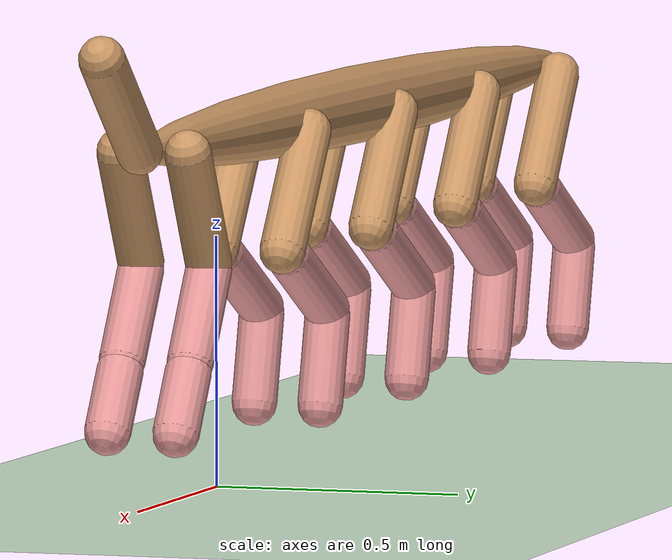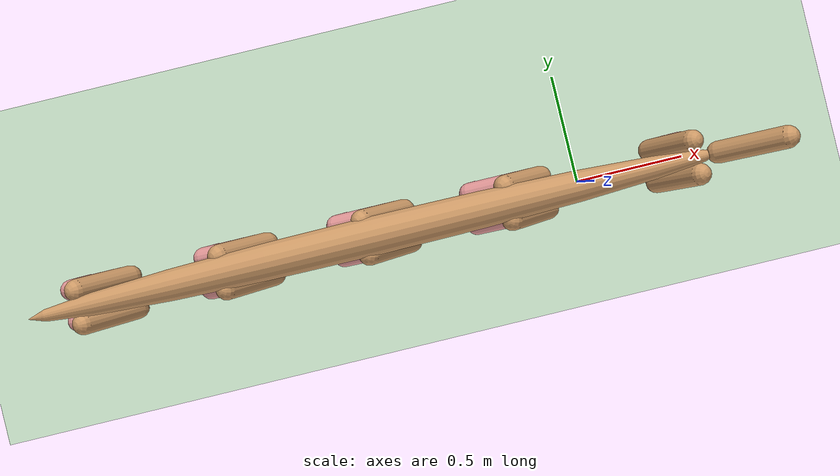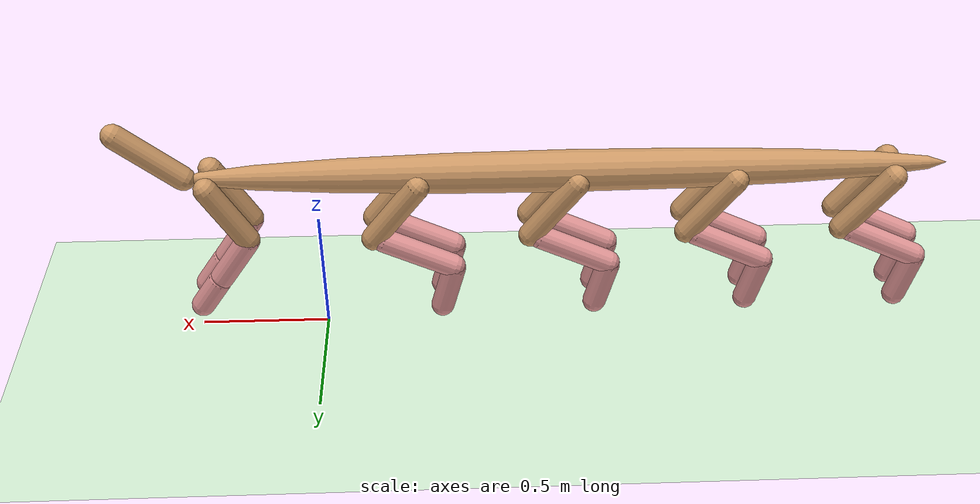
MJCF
<mujoco model="10-leg-creature">
  <compiler angle="radian" coordinate="local" inertiafromgeom="true" settotalmass="14"/>
  <default>
    <joint armature=".1" damping=".01" limited="true" solimplimit="0 .8 .03" solreflimit=".02 1" stiffness="8"/>
    <geom conaffinity="0" condim="3" contype="1" friction=".4 .1 .1" rgba="0.8 0.6 .4 1" solimp="0.0 0.8 0.01" solref="0.02 1"/>
    <motor ctrllimited="true" ctrlrange="-1 1"/>
  </default>
  <size nstack="300000" nuser_geom="1"/>
  <option gravity="0 0 -9.81" timestep="0.01"/>
  <asset>
    <texture builtin="gradient" height="100" rgb1="1 1 1" rgb2="0 0 0" type="skybox" width="100"/>
    <texture builtin="flat" height="1278" mark="cross" markrgb="1 1 1" name="texgeom" random="0.01" rgb1="0.8 0.6 0.4" rgb2="0.8 0.6 0.4" type="cube" width="127"/>
    <texture builtin="checker" height="100" name="texplane" rgb1="0 0 0" rgb2="0.8 0.8 0.8" type="2d" width="100"/>
    <material name="MatPlane" reflectance="0.5" shininess="1" specular="1" texrepeat="60 60" texture="texplane"/>
    <material name="geom" texture="texgeom" texuniform="true"/>
  </asset>
  <worldbody>
    <light cutoff="100" diffuse="1 1 1" dir="-0 0 -1.3" directional="true" exponent="1" pos="0 0 1.3" specular=".1 .1 .1"/>
    <geom conaffinity="1" condim="3" material="MatPlane" name="floor" pos="0 0 0" rgba="0.8 0.9 0.8 1" size="40 40 40" type="plane"/>
    <body name="torso" pos="0 0 .7">
      <camera name="track" mode="trackcom" pos="0 -6 0.3" xyaxes="1 0 0 0 0 1"/>
      <joint armature="0" axis="1 0 0" damping="0" limited="false" name="rootx" pos="0 0 0" stiffness="0" type="slide"/>
      <joint armature="0" axis="0 0 1" damping="0" limited="false" name="rootz" pos="0 0 0" stiffness="0" type="slide"/>
      <joint armature="0" axis="0 1 0" damping="0" limited="false" name="rooty" pos="0 0 0" stiffness="0" type="hinge"/>
      <geom fromto="-2.4 0 0 .5 0 0" name="torso" size="0.08" type="ellipsoid" mass="4"/>
      <geom axisangle="0 1 0 .87" name="head" pos=".6 0 .1" size="0.046 .15" type="capsule"/>
      <body name="left_bthigh" pos="-.4 0.07 0">
        <joint axis="0 1 0" damping="6" name="left_bthigh" pos="0 0 0" range="-.52 1.05" stiffness="240" type="hinge"/>
        <geom axisangle="0 1 0 -3.8" name="left_bthigh" pos=".1 0 -.13" size="0.046 .145" type="capsule"/>
        <body name="left_bshin" pos=".16 0 -.25">
          <joint axis="0 1 0" damping="4.5" name="left_bshin" pos="0 0 0" range="-.785 .785" stiffness="180" type="hinge"/>
          <geom axisangle="0 1 0 -2.03" name="left_bshin" pos="-.14 0 -.07" rgba="0.9 0.6 0.6 1" size="0.046 .15" type="capsule"/>
          <body name="left_bfoot" pos="-.28 0 -.14">
            <joint axis="0 1 0" damping="3" name="left_bfoot" pos="0 0 0" range="-.4 .785" stiffness="120" type="hinge"/>
            <geom axisangle="0 1 0 -.27" name="left_bfoot" pos=".03 0 -.097" rgba="0.9 0.6 0.6 1" size="0.046 .094" type="capsule"/>
          </body>
        </body>
      </body>
       <body name="right_bthigh" pos="-.4 -0.07 0">
        <joint axis="0 1 0" damping="6" name="right_bthigh" pos="0 0 0" range="-.52 1.05" stiffness="240" type="hinge"/>
        <geom axisangle="0 1 0 -3.8" name="right_bthigh" pos=".1 0 -.13" size="0.046 .145" type="capsule"/>
        <body name="right_bshin" pos=".16 0 -.25">
          <joint axis="0 1 0" damping="4.5" name="right_bshin" pos="0 0 0" range="-.785 .785" stiffness="180" type="hinge"/>
          <geom axisangle="0 1 0 -2.03" name="right_bshin" pos="-.14 0 -.07" rgba="0.9 0.6 0.6 1" size="0.046 .15" type="capsule"/>
          <body name="right_bfoot" pos="-.28 0 -.14">
            <joint axis="0 1 0" damping="3" name="right_bfoot" pos="0 0 0" range="-.4 .785" stiffness="120" type="hinge"/>
            <geom axisangle="0 1 0 -.27" name="right_bfoot" pos=".03 0 -.097" rgba="0.9 0.6 0.6 1" size="0.046 .094" type="capsule"/>
          </body>
        </body>
      </body>
      <body name="left_fthigh" pos=".4 0.07 0">
        <joint axis="0 1 0" damping="4.5" name="left_fthigh" pos="0 0 0" range="-1 .7" stiffness="180" type="hinge"/>
        <geom axisangle="0 1 0 .52" name="left_fthigh" pos="-.07 0 -.12" size="0.046 .133" type="capsule"/>
        <body name="left_fshin" pos="-.14 0 -.24">
          <joint axis="0 1 0" damping="3" name="left_fshin" pos="0 0 0" range="-1.2 .87" stiffness="120" type="hinge"/>
          <geom axisangle="0 1 0 -.6" name="left_fshin" pos=".065 0 -.09" rgba="0.9 0.6 0.6 1" size="0.046 .106" type="capsule"/>
          <body name="left_ffoot" pos=".13 0 -.18">
            <joint axis="0 1 0" damping="1.5" name="left_ffoot" pos="0 0 0" range="-.5 .5" stiffness="60" type="hinge"/>
            <geom axisangle="0 1 0 -.6" name="left_ffoot" pos=".045 0 -.07" rgba="0.9 0.6 0.6 1" size="0.046 .07" type="capsule"/>
          </body>
        </body>
      </body>
      <body name="right_fthigh" pos=".4 -0.07 0">
        <joint axis="0 1 0" damping="4.5" name="right_fthigh" pos="0 0 0" range="-1 .7" stiffness="180" type="hinge"/>
        <geom axisangle="0 1 0 .52" name="right_fthigh" pos="-.07 0 -.12" size="0.046 .133" type="capsule"/>
        <body name="right_fshin" pos="-.14 0 -.24">
          <joint axis="0 1 0" damping="3" name="right_fshin" pos="0 0 0" range="-1.2 .87" stiffness="120" type="hinge"/>
          <geom axisangle="0 1 0 -.6" name="right_fshin" pos=".065 0 -.09" rgba="0.9 0.6 0.6 1" size="0.046 .106" type="capsule"/>
          <body name="right_ffoot" pos=".13 0 -.18">
            <joint axis="0 1 0" damping="1.5" name="right_ffoot" pos="0 0 0" range="-.5 .5" stiffness="60" type="hinge"/>
            <geom axisangle="0 1 0 -.6" name="right_ffoot" pos=".045 0 -.07" rgba="0.9 0.6 0.6 1" size="0.046 .07" type="capsule"/>
          </body>
        </body>
      </body>

      <body name="left_bthigh_1" pos="-1 0.07 0">
        <joint axis="0 1 0" damping="6" name="left_bthigh_1" pos="0 0 0" range="-.52 1.05" stiffness="240" type="hinge"/>
        <geom axisangle="0 1 0 -3.8" name="left_bthigh_1" pos=".1 0 -.13" size="0.046 .145" type="capsule"/>
        <body name="left_bshin_1" pos=".16 0 -.25">
          <joint axis="0 1 0" damping="4.5" name="left_bshin_1" pos="0 0 0" range="-.785 .785" stiffness="180" type="hinge"/>
          <geom axisangle="0 1 0 -2.03" name="left_bshin_1" pos="-.14 0 -.07" rgba="0.9 0.6 0.6 1" size="0.046 .15" type="capsule"/>
          <body name="left_bfoot_1" pos="-.28 0 -.14">
            <joint axis="0 1 0" damping="3" name="left_bfoot_1" pos="0 0 0" range="-.4 .785" stiffness="120" type="hinge"/>
            <geom axisangle="0 1 0 -.27" name="left_bfoot_1" pos=".03 0 -.097" rgba="0.9 0.6 0.6 1" size="0.046 .094" type="capsule"/>
          </body>
        </body>
      </body>
       <body name="right_bthigh_1" pos="-1 -0.07 0">
        <joint axis="0 1 0" damping="6" name="right_bthigh_1" pos="0 0 0" range="-.52 1.05" stiffness="240" type="hinge"/>
        <geom axisangle="0 1 0 -3.8" name="right_bthigh_1" pos=".1 0 -.13" size="0.046 .145" type="capsule"/>
        <body name="right_bshin_1" pos=".16 0 -.25">
          <joint axis="0 1 0" damping="4.5" name="right_bshin_1" pos="0 0 0" range="-.785 .785" stiffness="180" type="hinge"/>
          <geom axisangle="0 1 0 -2.03" name="right_bshin_1" pos="-.14 0 -.07" rgba="0.9 0.6 0.6 1" size="0.046 .15" type="capsule"/>
          <body name="right_bfoot_1" pos="-.28 0 -.14">
            <joint axis="0 1 0" damping="3" name="right_bfoot_1" pos="0 0 0" range="-.4 .785" stiffness="120" type="hinge"/>
            <geom axisangle="0 1 0 -.27" name="right_bfoot_1" pos=".03 0 -.097" rgba="0.9 0.6 0.6 1" size="0.046 .094" type="capsule"/>
          </body>
        </body>
      </body>
      <body name="left_bthigh_2" pos="-1.6 0.07 0">
        <joint axis="0 1 0" damping="6" name="left_bthigh_2" pos="0 0 0" range="-.52 1.05" stiffness="240" type="hinge"/>
        <geom axisangle="0 1 0 -3.8" name="left_bthigh_2" pos=".1 0 -.13" size="0.046 .145" type="capsule"/>
        <body name="left_bshin_2" pos=".16 0 -.25">
          <joint axis="0 1 0" damping="4.5" name="left_bshin_2" pos="0 0 0" range="-.785 .785" stiffness="180" type="hinge"/>
          <geom axisangle="0 1 0 -2.03" name="left_bshin_2" pos="-.14 0 -.07" rgba="0.9 0.6 0.6 1" size="0.046 .15" type="capsule"/>
          <body name="left_bfoot_2" pos="-.28 0 -.14">
            <joint axis="0 1 0" damping="3" name="left_bfoot_2" pos="0 0 0" range="-.4 .785" stiffness="120" type="hinge"/>
            <geom axisangle="0 1 0 -.27" name="left_bfoot_2" pos=".03 0 -.097" rgba="0.9 0.6 0.6 1" size="0.046 .094" type="capsule"/>
          </body>
        </body>
      </body>
       <body name="right_bthigh_2" pos="-1.6 -0.07 0">
        <joint axis="0 1 0" damping="6" name="right_bthigh_2" pos="0 0 0" range="-.52 1.05" stiffness="240" type="hinge"/>
        <geom axisangle="0 1 0 -3.8" name="right_bthigh_2" pos=".1 0 -.13" size="0.046 .145" type="capsule"/>
        <body name="right_bshin_2" pos=".16 0 -.25">
          <joint axis="0 1 0" damping="4.5" name="right_bshin_2" pos="0 0 0" range="-.785 .785" stiffness="180" type="hinge"/>
          <geom axisangle="0 1 0 -2.03" name="right_bshin_2" pos="-.14 0 -.07" rgba="0.9 0.6 0.6 1" size="0.046 .15" type="capsule"/>
          <body name="right_bfoot_2" pos="-.28 0 -.14">
            <joint axis="0 1 0" damping="3" name="right_bfoot_2" pos="0 0 0" range="-.4 .785" stiffness="120" type="hinge"/>
            <geom axisangle="0 1 0 -.27" name="right_bfoot_2" pos=".03 0 -.097" rgba="0.9 0.6 0.6 1" size="0.046 .094" type="capsule"/>
          </body>
        </body>
      </body>
      <body name="left_bthigh_3" pos="-2.2 0.07 0">
        <joint axis="0 1 0" damping="6" name="left_bthigh_3" pos="0 0 0" range="-.52 1.05" stiffness="240" type="hinge"/>
        <geom axisangle="0 1 0 -3.8" name="left_bthigh_3" pos=".1 0 -.13" size="0.046 .145" type="capsule"/>
        <body name="left_bshin_3" pos=".16 0 -.25">
          <joint axis="0 1 0" damping="4.5" name="left_bshin_3" pos="0 0 0" range="-.785 .785" stiffness="180" type="hinge"/>
          <geom axisangle="0 1 0 -2.03" name="left_bshin_3" pos="-.14 0 -.07" rgba="0.9 0.6 0.6 1" size="0.046 .15" type="capsule"/>
          <body name="left_bfoot_3" pos="-.28 0 -.14">
            <joint axis="0 1 0" damping="3" name="left_bfoot_3" pos="0 0 0" range="-.4 .785" stiffness="120" type="hinge"/>
            <geom axisangle="0 1 0 -.27" name="left_bfoot_3" pos=".03 0 -.097" rgba="0.9 0.6 0.6 1" size="0.046 .094" type="capsule"/>
          </body>
        </body>
      </body>
     <body name="right_bthigh_3" pos="-2.2 -0.07 0">
        <joint axis="0 1 0" damping="6" name="right_bthigh_3" pos="0 0 0" range="-.52 1.05" stiffness="240" type="hinge"/>
        <geom axisangle="0 1 0 -3.8" name="right_bthigh_3" pos=".1 0 -.13" size="0.046 .145" type="capsule"/>
        <body name="right_bshin_3" pos=".16 0 -.25">
          <joint axis="0 1 0" damping="4.5" name="right_bshin_3" pos="0 0 0" range="-.785 .785" stiffness="180" type="hinge"/>
          <geom axisangle="0 1 0 -2.03" name="right_bshin_3" pos="-.14 0 -.07" rgba="0.9 0.6 0.6 1" size="0.046 .15" type="capsule"/>
          <body name="right_bfoot_3" pos="-.28 0 -.14">
            <joint axis="0 1 0" damping="3" name="right_bfoot_3" pos="0 0 0" range="-.4 .785" stiffness="120" type="hinge"/>
            <geom axisangle="0 1 0 -.27" name="right_bfoot_3" pos=".03 0 -.097" rgba="0.9 0.6 0.6 1" size="0.046 .094" type="capsule"/>
          </body>
        </body>
      </body>
    </body>
  </worldbody>
  <actuator>
    <motor gear="120" joint="left_bthigh" name="left_bthigh"/>
    <motor gear="90" joint="left_bshin" name="left_bshin"/>
    <motor gear="60" joint="left_bfoot" name="left_bfoot"/>
    <motor gear="120" joint="left_bthigh_1" name="left_bthigh_1"/>
    <motor gear="90" joint="left_bshin_1" name="left_bshin_1"/>
    <motor gear="60" joint="left_bfoot_1" name="left_bfoot_1"/>
    <motor gear="120" joint="left_bthigh_2" name="left_bthigh_2"/>
    <motor gear="90" joint="left_bshin_2" name="left_bshin_2"/>
    <motor gear="60" joint="left_bfoot_2" name="left_bfoot_2"/>
    <motor gear="120" joint="left_bthigh_3" name="left_bthigh_3"/>
    <motor gear="90" joint="left_bshin_3" name="left_bshin_3"/>
    <motor gear="60" joint="left_bfoot_3" name="left_bfoot_3"/>
    <motor gear="120" joint="left_fthigh" name="left_fthigh"/>
    <motor gear="60" joint="left_fshin" name="left_fshin"/>
    <motor gear="30" joint="left_ffoot" name="left_ffoot"/>
    <motor gear="120" joint="right_bthigh" name="right_bthigh"/>
    <motor gear="90" joint="right_bshin" name="right_bshin"/>
    <motor gear="60" joint="right_bfoot" name="right_bfoot"/>
    <motor gear="120" joint="right_bthigh_1" name="right_bthigh_1"/>
    <motor gear="90" joint="right_bshin_1" name="right_bshin_1"/>
    <motor gear="60" joint="right_bfoot_1" name="right_bfoot_1"/>
    <motor gear="120" joint="right_bthigh_2" name="right_bthigh_2"/>
    <motor gear="90" joint="right_bshin_2" name="right_bshin_2"/>
    <motor gear="60" joint="right_bfoot_2" name="right_bfoot_2"/>
    <motor gear="120" joint="right_bthigh_3" name="right_bthigh_3"/>
    <motor gear="90" joint="right_bshin_3" name="right_bshin_3"/>
    <motor gear="60" joint="right_bfoot_3" name="right_bfoot_3"/>
    <motor gear="120" joint="right_fthigh" name="right_fthigh"/>
    <motor gear="60" joint="right_fshin" name="right_fshin"/>
    <motor gear="30" joint="right_ffoot" name="right_ffoot"/>
  </actuator>
</mujoco>
